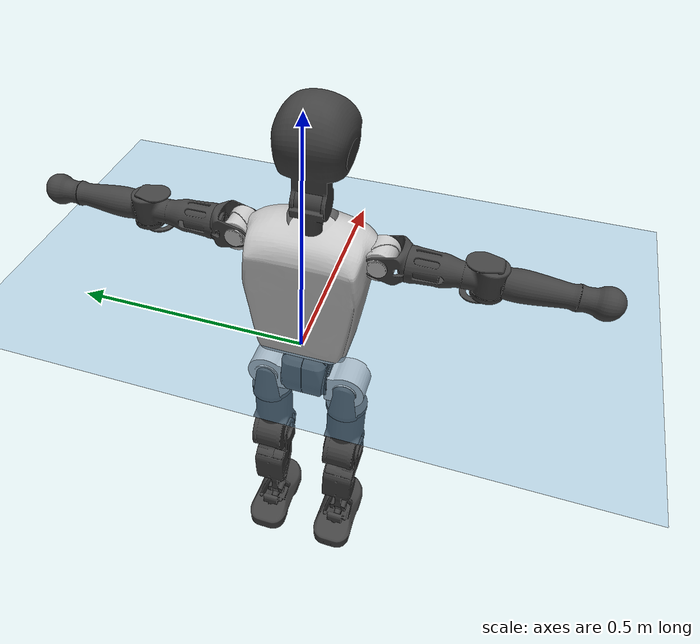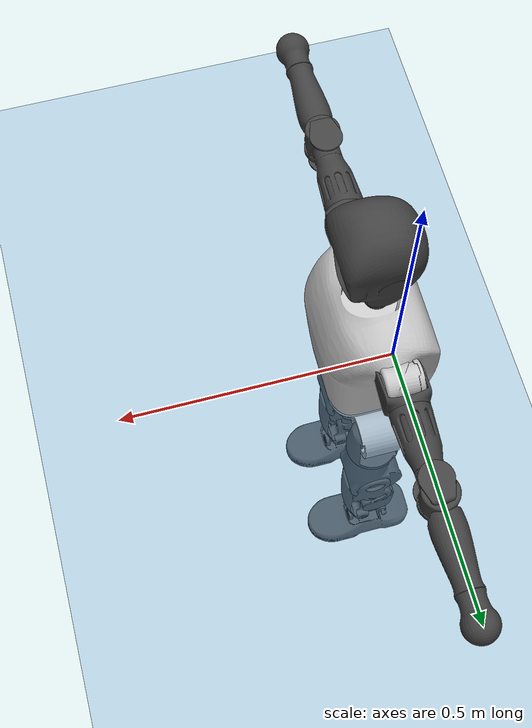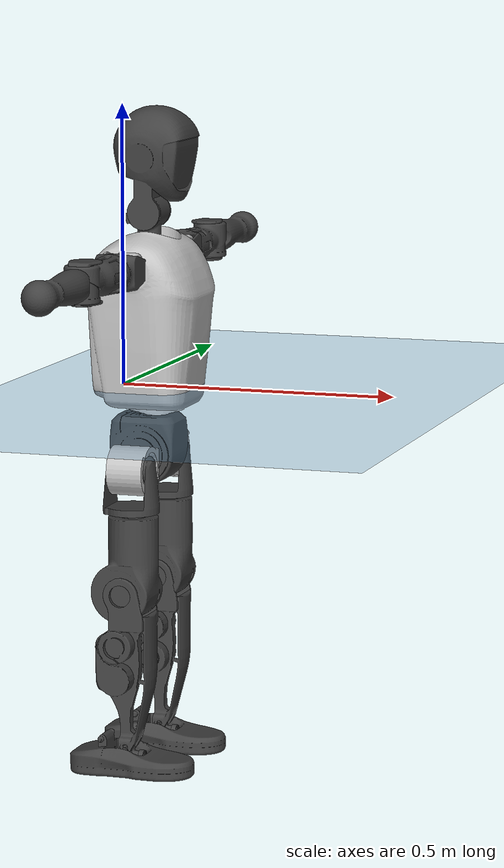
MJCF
<mujoco model="T1">
  <compiler angle="radian" assetdir="assets" balanceinertia="true" inertiafromgeom="false"/>

  <option timestep="0.005" density="1.2" viscosity="2e-05"/>

  <size nkey="1"/>

  <visual>
    <quality shadowsize="8192"/>
    <map shadowclip="0.5"/>
  </visual>

  <default>
    <default class="/">
      <joint armature="0.01" damping="0.01" frictionloss="0.1"/>
      <geom contype="0" conaffinity="0" group="1" solref="-1000 -80"/>
      <site size="0.01 0.005 0.005" group="5"/>
      <general forcelimited="true" biastype="affine" gainprm="25" biasprm="0 -25 -0.6"/>
      <default class="t1">
        <geom rgba="0.25 0.25 0.25 1"/>
        <default class="visual">
          <geom type="mesh" group="2"/>
        </default>
        <default class="collision">
          <geom group="3"/>
        </default>
        <default class="foot">
          <geom size="0.1115 0.05 0.015" type="box" condim="6" group="4" priority="1" solimp="0.015 1 0.015"/>
        </default>
        <default class="reward_collision_sphere">
          <geom group="5" rgba="1 0 0 1"/>
        </default>
      </default>
    </default>
  </default>

  <asset>
    <texture type="skybox" colorspace="auto" name="//unnamed_texture_0" builtin="gradient" rgb1="0.95 0.95 0.95" rgb2="0.95 0.95 0.95" width="100" height="600"/>
    <texture type="2d" colorspace="auto" name="texplane" builtin="checker" rgb1="0.345 0.575 0.748" rgb2="0.345 0.575 0.748" markrgb="1 1 1" width="512" height="512"/>
    <material name="MatPlane" class="/" texture="texplane" texuniform="true" texrepeat="2 2" specular="0.9"/>
    <mesh name="Trunk" class="/" file="Trunk.stl"/>
    <mesh name="H1" class="/" file="H1.stl"/>
    <mesh name="H2" class="/" file="H2.stl"/>
    <mesh name="AL1" class="/" file="AL1.stl"/>
    <mesh name="AL2" class="/" file="AL2.stl"/>
    <mesh name="AL3" class="/" file="AL3.stl"/>
    <mesh name="left_hand_link" class="/" file="left_hand_link.stl"/>
    <mesh name="AR1" class="/" file="AR1.stl"/>
    <mesh name="AR2" class="/" file="AR2.stl"/>
    <mesh name="AR3" class="/" file="AR3.stl"/>
    <mesh name="right_hand_link" class="/" file="right_hand_link.stl"/>
    <mesh name="Waist" class="/" file="Waist.stl"/>
    <mesh name="Hip_Pitch_Left" class="/" file="Hip_Pitch_Left.stl"/>
    <mesh name="Hip_Roll_Left" class="/" file="Hip_Roll_Left.stl"/>
    <mesh name="Hip_Yaw_Left" class="/" file="Hip_Yaw_Left.stl"/>
    <mesh name="Shank_Left" class="/" file="Shank_Left.stl"/>
    <mesh name="Ankle_Cross_Left" class="/" file="Ankle_Cross_Left.stl"/>
    <mesh name="left_foot_link" class="/" file="left_foot_link.stl"/>
    <mesh name="Hip_Pitch_Right" class="/" file="Hip_Pitch_Right.stl"/>
    <mesh name="Hip_Roll_Right" class="/" file="Hip_Roll_Right.stl"/>
    <mesh name="Hip_Yaw_Right" class="/" file="Hip_Yaw_Right.stl"/>
    <mesh name="Shank_Right" class="/" file="Shank_Right.stl"/>
    <mesh name="Ankle_Cross_Right" class="/" file="Ankle_Cross_Right.stl"/>
    <mesh name="right_foot_link" class="/" file="right_foot_link.stl"/>
  </asset>

  <worldbody>
    <geom name="floor" class="/" size="100 100 0.125" type="plane" group="0" material="MatPlane"/>
    <light name="toplight_shadow" class="/" pos="0 0 5" dir="0.0990148 0.0990148 -0.990148" type="directional" ambient="0.04 0.04 0.04" diffuse="0.55 0.55 0.55" specular="0.12 0.12 0.12"/>
    <light name="toplight_fill" class="/" pos="0 0 5" dir="0.0990148 0.0990148 -0.990148" type="directional" castshadow="false" ambient="0.04 0.04 0.04" diffuse="0.3 0.3 0.3" specular="0.08 0.08 0.08"/>
    <body name="trunk" childclass="t1" pos="2.62011e-05 -0.000333839 0.00100289" quat="1 1.15842e-05 4.13659e-05 -9.27654e-05">
      <inertial pos="0.0443687 -0.00162008 0.108107" quat="0.99996 -7.80895e-06 -0.00896019 1.39773e-05" mass="8.64276" diaginertia="0.0322564 0.0382295 0.0628325"/>
      <joint name="//unnamed_joint_0" type="free" armature="0" damping="0" frictionloss="0"/>
      <geom name="//unnamed_geom_1" class="visual" rgba="0.76 0.76 0.76 1" mesh="Trunk"/>
      <geom name="//unnamed_geom_2" class="collision" size="0.0674842 0.0899789 0.134968" pos="0.0485988 0 0.122743" type="box"/>
      <geom name="//unnamed_geom_3" class="reward_collision_sphere" size="0.103476" pos="0.0485988 0 0.102286"/>
      <geom name="//unnamed_geom_4" class="reward_collision_sphere" size="0.0134968" pos="0.0485988 0.0736547 0"/>
      <geom name="//unnamed_geom_5" class="reward_collision_sphere" size="0.0134968" pos="0.0485988 -0.0736547 0"/>
      <geom name="//unnamed_geom_6" class="reward_collision_sphere" size="0.0134968" pos="0.0485988 0.0927182 0.184115"/>
      <geom name="//unnamed_geom_7" class="reward_collision_sphere" size="0.0134968" pos="0.0485988 -0.0927182 0.184115"/>
      <site name="imu" pos="0.000351987 0.00859943 0.0047088" size="0.00899789"/>
      <camera name="track" pos="0 -1.73305 0" quat="0.707107 0.707107 0 0" mode="trackcom"/>
      <camera name="ego_camera" pos="0.0988176 0 0.429602" quat="-0.5 -0.5 0.5 0.5"/>
      <body name="H1" pos="0.0504715 -0.000290833 0.24914" quat="1 -0.000297805 -0.000205829 -0.000673538">
        <inertial pos="-0.000784026 -0.00103969 0.057812" quat="0.766361 -0.0126134 0.00509102 0.642266" mass="0.319243" diaginertia="8.55765e-05 0.000109477 0.00017189"/>
        <joint name="AAHead_yaw" pos="0 0 0" axis="-0.00252434 0.00500686 0.999984" range="-1.58914 1.61566" armature="0.00881927" damping="0.00369754" frictionloss="0.0891216"/>
        <geom name="//unnamed_geom_8" class="visual" mesh="H1"/>
        <body name="H2" pos="-0.000636337 0.000321106 0.0605631" quat="0.999999 4.71454e-05 -0.00104269 0.000623061">
          <inertial pos="0.00624264 0.000695463 0.101705" quat="0.988536 0.106092 -0.0743617 -0.0775275" mass="0.459081" diaginertia="0.000710532 0.000947757 0.00188705"/>
          <joint name="Head_pitch" pos="0 0 0" axis="0.000186823 -0.999991 -0.00419896" range="-1.23539 0.344475" armature="0.00911936" damping="0.00939181" frictionloss="0.0898407"/>
          <geom name="//unnamed_geom_9" class="visual" mesh="H2"/>
          <geom name="//unnamed_geom_10" class="collision" size="0.0719832" pos="0.0080998 0 0.112515"/>
          <geom name="//unnamed_geom_11" class="reward_collision_sphere" size="0.0809811" pos="0.0161996 0 0.102286"/>
        </body>
      </body>
      <body name="AL1" pos="0.0486341 0.0926196 0.223891" quat="1 0.000237833 0.000260793 -6.93541e-05">
        <inertial pos="-0.00160713 0.0387935 -0.000171788" quat="0.502087 0.503118 -0.504763 0.489893" mass="0.384691" diaginertia="0.000475603 0.000626394 0.000322723"/>
        <joint name="Left_Shoulder_Pitch" pos="0 0 0" axis="0.00112869 0.999999 0.000435551" range="-3.26424 1.22275" armature="0.0087279" damping="0.00911863" frictionloss="0.0933652"/>
        <geom name="//unnamed_geom_12" class="visual" rgba="0.76 0.76 0.76 1" mesh="AL1"/>
        <body name="AL2" pos="0.00183902 0.0410286 0.000143265" quat="1 0.000626206 -0.000647026 0.000278469">
          <inertial pos="0.00550574 0.0324368 -0.000355859" quat="0.48684 0.51295 -0.488213 0.511388" mass="0.113697" diaginertia="0.000136955 0.000163713 0.000192712"/>
          <joint name="Left_Shoulder_Roll" pos="0 0 0" axis="-0.999995 0.0031522 -0.000494783" range="-1.56855 1.75086" armature="0.009153" damping="0.0108712" frictionloss="0.0884831"/>
          <geom name="//unnamed_geom_13" class="visual" mesh="AL2"/>
          <body name="AL3" pos="0.00100913 0.0536322 -0.000660113" quat="1 0.000841707 3.70037e-06 -0.000326849">
            <inertial pos="0.0016815 0.0736236 -0.00101808" quat="0.707911 0.706201 -0.00313328 -0.0114961" mass="0.764975" diaginertia="0.0046772 0.00663947 0.000720547"/>
            <joint name="Left_Elbow_Pitch" pos="0 0 0" axis="-0.000638524 -0.999988 0.00489148" range="-2.28345 2.31487" armature="0.00962044" damping="0.0103881" frictionloss="0.100436"/>
            <geom name="//unnamed_geom_14" class="visual" mesh="AL3"/>
            <geom name="//unnamed_geom_15" class="collision" size="0.0269937 0.0674842" pos="0 0.0433263 0" quat="0.707105 0.707108 0 0" type="cylinder"/>
            <geom name="//unnamed_geom_16" class="reward_collision_sphere" size="0.0323924"/>
            <body name="left_hand_link" pos="0.00088189 0.126769 0.000872369" quat="0.999999 -6.44855e-05 -0.000688528 0.000857567">
              <inertial pos="0.000231025 0.0957952 0.000837229" quat="0.707246 0.706959 0.0033501 0.000834173" mass="0.240182" diaginertia="0.00292568 0.00403274 0.000236026"/>
              <joint name="Left_Elbow_Yaw" pos="0 0 0" axis="-0.0102155 -0.000817331 0.999947" range="-2.43225 0.0476555" armature="0.00842041" damping="0.00257436" frictionloss="0.087906"/>
              <geom name="//unnamed_geom_17" class="visual" mesh="left_hand_link"/>
              <geom name="//unnamed_geom_18" class="collision" size="0.0269937 0.0787316" pos="0 0.112648 0" quat="0.707105 0.707108 0 0" type="cylinder"/>
              <geom name="//unnamed_geom_19" class="reward_collision_sphere" size="0.0449895"/>
              <geom name="//unnamed_geom_20" class="reward_collision_sphere" size="0.0314926" pos="0 0.0953178 0"/>
              <geom name="//unnamed_geom_21" class="reward_collision_sphere" size="0.0314926" pos="0 0.186303 0"/>
            </body>
          </body>
        </body>
      </body>
      <body name="AR1" pos="0.0468978 -0.0891127 0.221656" quat="1 -0.000245797 0.000331509 0.000150839">
        <inertial pos="-0.00101291 -0.0409542 0.000200856" quat="0.506789 0.4959 -0.500383 0.496855" mass="0.385063" diaginertia="0.000476821 0.000636669 0.000327532"/>
        <joint name="Right_Shoulder_Pitch" pos="0 0 0" axis="0.0101413 -0.999904 0.00942629" range="-1.22492 3.35036" armature="0.00919843" damping="0.00356627" frictionloss="0.0801081"/>
        <geom name="//unnamed_geom_22" class="visual" rgba="0.76 0.76 0.76 1" mesh="AR1"/>
        <body name="AR2" pos="0.00178142 -0.0410383 -0.000717892" quat="1 -3.2142e-05 4.08377e-05 -2.39978e-05">
          <inertial pos="0.00411841 -0.0328436 0.000504453" quat="0.51575 0.485359 -0.511999 0.486093" mass="0.122705" diaginertia="0.000143744 0.000174105 0.000201613"/>
          <joint name="Right_Shoulder_Roll" pos="0 0 0" axis="-0.999988 0.00311345 -0.00371361" range="-1.7488 1.58938" armature="0.00906458" damping="0.000605222" frictionloss="0.0960094"/>
          <geom name="//unnamed_geom_23" class="visual" mesh="AR2"/>
          <body name="AR3" pos="-0.0020889 -0.0535583 -0.000346309" quat="1 0.000215097 0.000134703 -3.22761e-05">
            <inertial pos="-0.000243801 -0.0729599 0.000606858" quat="0.705557 0.708649 0.00183788 -0.00174969" mass="0.776828" diaginertia="0.00462787 0.00643017 0.000717864"/>
            <joint name="Right_Elbow_Pitch" pos="0 0 0" axis="-0.00124119 0.999997 0.00219821" range="-2.29359 2.2365" armature="0.00880636" damping="0.0148833" frictionloss="0.089512"/>
            <geom name="//unnamed_geom_24" class="visual" mesh="AR3"/>
            <geom name="//unnamed_geom_25" class="collision" size="0.0269937 0.0674842" pos="0 -0.0433263 0" quat="0.707105 0.707108 0 0" type="cylinder"/>
            <geom name="//unnamed_geom_26" class="reward_collision_sphere" size="0.0323924"/>
            <body name="right_hand_link" pos="-0.000431086 -0.127694 0.000833273" quat="1 5.39567e-08 6.94465e-08 -4.09897e-07">
              <inertial pos="-0.00056652 -0.094939 -0.00112908" quat="0.706123 0.708088 -0.000842303 -0.000643121" mass="0.230778" diaginertia="0.00284525 0.00396004 0.000239391"/>
              <joint name="Right_Elbow_Yaw" pos="0 0 0" axis="7.86081e-05 -0.00688718 0.999976" range="-0.0213364 2.47083" armature="0.00891152" damping="0.00794974" frictionloss="0.0876298"/>
              <geom name="//unnamed_geom_27" class="visual" mesh="right_hand_link"/>
              <geom name="//unnamed_geom_28" class="collision" size="0.0269937 0.0787316" pos="0 -0.112648 0" quat="0.707105 0.707108 0 0" type="cylinder"/>
              <geom name="//unnamed_geom_29" class="reward_collision_sphere" size="0.0449895"/>
              <geom name="//unnamed_geom_30" class="reward_collision_sphere" size="0.0314926" pos="0 -0.0953178 0"/>
              <geom name="//unnamed_geom_31" class="reward_collision_sphere" size="0.0314926" pos="0 -0.186303 0"/>
            </body>
          </body>
        </body>
      </body>
      <body name="Waist" pos="0.0483986 -0.00209214 -0.118508" quat="1 0.000587493 -2.97789e-06 0.000194673">
        <inertial pos="0.00170419 -0.00211622 0.00733879" quat="0.983644 0.000239768 -0.180104 0.0025511" mass="1.84494" diaginertia="0.00180671 0.00251169 0.00521236"/>
        <joint name="Waist" pos="0 0 0" axis="-0.000695475 -0.00198842 0.999998" range="-1.5698 1.57304" armature="0.00852815" damping="0.00347729" frictionloss="0.0804095"/>
        <geom name="//unnamed_geom_32" class="visual" mesh="Waist"/>
        <body name="Hip_Pitch_Left" pos="0.000177698 0.0901313 0.00127124" quat="1 -0.000280067 0.000423286 0.000836395">
          <inertial pos="0.0011906 -0.00555845 -0.018942" quat="0.974775 0.222583 0.0164522 0.000675151" mass="0.742314" diaginertia="0.000638877 0.000739453 0.00142646"/>
          <joint name="Left_Hip_Pitch" pos="0 0 0" axis="0.00920242 0.999952 0.00330384" range="-1.7985 1.55256" armature="0.00953147" damping="0.0146282" frictionloss="0.0855917"/>
          <geom name="//unnamed_geom_33" class="visual" rgba="0.76 0.76 0.76 1" mesh="Hip_Pitch_Left"/>
          <body name="Hip_Roll_Left" pos="0.0021234 -0.00025508 -0.0207094" quat="0.999999 -0.000520528 0.00117326 -5.24044e-05">
            <inertial pos="-0.000695543 -0.00144752 -0.0558741" quat="0.710424 -0.00413677 -0.0167277 0.703563" mass="0.280894" diaginertia="0.000593416 0.000737875 0.000581043"/>
            <joint name="Left_Hip_Roll" pos="0 0 0" axis="-0.999943 0.00708272 0.00797246" range="-1.58536 0.242013" armature="0.00979358" damping="0.00963898" frictionloss="0.0875077"/>
            <geom name="//unnamed_geom_34" class="visual" mesh="Hip_Roll_Left"/>
            <geom name="//unnamed_geom_35" class="reward_collision_sphere" size="0.0494884"/>
            <body name="Hip_Yaw_Left" pos="0.00263431 -0.00127029 -0.0827941" quat="0.999999 -0.000917427 -0.000563139 0.000610797">
              <inertial pos="-0.00571627 -0.000348039 -0.0910407" quat="0.697218 -0.0339434 -0.0314283 0.715365" mass="1.58357" diaginertia="0.0089978 0.0124626 0.00296876"/>
              <joint name="Left_Hip_Yaw" pos="0 0 0" axis="-0.0046666 0.00405408 -0.999981" range="-1.01888 0.964245" armature="0.00905756" damping="0.0142319" frictionloss="0.0870409"/>
              <geom name="//unnamed_geom_36" class="visual" mesh="Hip_Yaw_Left"/>
              <geom name="//unnamed_geom_37" class="collision" size="0.0449895 0.0719832" type="cylinder"/>
              <body name="Shank_Left" pos="-0.0112122 2.13699e-05 -0.139954" quat="1 -0.000141832 4.59205e-05 -0.000114828">
                <inertial pos="-0.00329641 -0.00135409 -0.126702" quat="0.997524 -0.000803357 -0.024251 0.0660159" mass="1.25969" diaginertia="0.0121423 0.0166411 0.00205063"/>
                <joint name="Left_Knee_Pitch" pos="0 0 0" axis="-1.30201e-05 1 -0.000105443" range="-0.00723639 2.32466" armature="0.00897793" damping="0.0129679" frictionloss="0.0919038"/>
                <geom name="//unnamed_geom_38" class="visual" mesh="Shank_Left"/>
                <geom name="//unnamed_geom_39" class="collision" size="0.0449895 0.0674842" pos="0 0 -0.122743" type="cylinder"/>
                <geom name="//unnamed_geom_40" class="reward_collision_sphere" size="0.0584863"/>
                <body name="Ankle_Cross_Left" pos="-0.00119018 -0.000925249 -0.284763" quat="1 1.56287e-05 4.75464e-06 -3.29213e-05">
                  <inertial pos="-0.00204334 -0.000787088 -0.00777913" quat="0.443432 0.550411 0.550868 0.443802" mass="0.0551432" diaginertia="1.01532e-05 1.28372e-05 1.28531e-05"/>
                  <joint name="Left_Ankle_Pitch" pos="0 0 0" axis="-0.00105914 0.999999 -0.00136461" range="-0.849988 0.32879" armature="0.00924969" damping="0.00679224" frictionloss="0.0867905"/>
                  <geom name="//unnamed_geom_41" class="visual" mesh="Ankle_Cross_Left"/>
                  <body name="left_foot_link" pos="-0.00136991 0.000890966 -0.0119891" quat="1 -0.000166072 6.60729e-05 -0.000181263">
                    <inertial pos="-0.00105861 0.0013904 -0.00910887" quat="0.000690708 0.62019 0.000473551 0.784451" mass="0.480584" diaginertia="0.000957969 0.00114694 0.00239923"/>
                    <joint name="Left_Ankle_Roll" pos="0 0 0" axis="-0.999991 -0.000253761 0.00416183" range="-0.420956 0.483598" armature="0.00995757" damping="0.0110615" frictionloss="0.0853526"/>
                    <geom name="//unnamed_geom_42" class="visual" mesh="left_foot_link"/>
                    <geom name="left_foot" class="foot" size="0.108587 0.0469701 0.0143353" pos="0.0080998 0 -0.0153429"/>
                    <geom name="//unnamed_geom_44" class="reward_collision_sphere" size="0.0467891" pos="0.0080998 0 -0.0153429"/>
                    <geom name="//unnamed_geom_45" class="reward_collision_sphere" size="0.0269937" pos="0.0769481 -0.0199301 -0.0153429"/>
                    <geom name="//unnamed_geom_46" class="reward_collision_sphere" size="0.0269937" pos="-0.0566986 -0.0199301 -0.0153429"/>
                    <site name="left_foot" class="foot" pos="0.0080998 0 -0.0153429" size="0.00899789"/>
                  </body>
                </body>
              </body>
            </body>
          </body>
        </body>
        <body name="Hip_Pitch_Right" pos="0.000832763 -0.0912621 -0.00116251" quat="1 5.91706e-05 6.89354e-05 -0.00011026">
          <inertial pos="-0.00134868 0.00671491 -0.0182857" quat="0.973301 -0.229068 0.0137798 -0.00480602" mass="0.758553" diaginertia="0.000637368 0.000719103 0.00141009"/>
          <joint name="Right_Hip_Pitch" pos="0 0 0" axis="-0.00234159 -0.999987 0.00463669" range="-1.58532 1.79974" armature="0.0101482" damping="0.0117819" frictionloss="0.0926778"/>
          <geom name="//unnamed_geom_47" class="visual" rgba="0.76 0.76 0.76 1" mesh="Hip_Pitch_Right"/>
          <body name="Hip_Roll_Right" pos="0.00010339 -0.00020968 -0.0186306" quat="1 6.85332e-05 -6.22409e-05 -0.000100429">
            <inertial pos="0.00129912 -0.00263189 -0.0557494" quat="0.702766 -0.00610136 -0.0131732 0.711273" mass="0.270963" diaginertia="0.000590527 0.000719863 0.000559302"/>
            <joint name="Right_Hip_Roll" pos="0 0 0" axis="-0.999997 -0.00222449 -0.000466051" range="-0.21241 1.57006" armature="0.00915859" damping="0.00292216" frictionloss="0.0851135"/>
            <geom name="//unnamed_geom_48" class="visual" mesh="Hip_Roll_Right"/>
            <geom name="//unnamed_geom_49" class="reward_collision_sphere" size="0.0494884"/>
            <body name="Hip_Yaw_Right" pos="0.00165454 -0.000876502 -0.0839372" quat="1 -0.000371758 0.000454245 -0.000445819">
              <inertial pos="-0.00544951 -0.00290365 -0.0921988" quat="0.71655 -0.0355315 -0.0342373 0.695789" mass="1.52876" diaginertia="0.00871537 0.0119891 0.00284667"/>
              <joint name="Right_Hip_Yaw" pos="0 0 0" axis="0.00289015 -0.00440362 -0.999986" range="-1.00132 1.03273" armature="0.00922034" damping="0.00496842" frictionloss="0.0895429"/>
              <geom name="//unnamed_geom_50" class="visual" mesh="Hip_Yaw_Right"/>
              <geom name="//unnamed_geom_51" class="collision" size="0.0449895 0.0719832" type="cylinder"/>
              <body name="Shank_Right" pos="-0.0108277 -0.00161805 -0.136693" quat="1 3.98276e-05 -2.651e-05 8.17201e-05">
                <inertial pos="-0.00449312 0.000101902 -0.124743" quat="0.999223 0.000880387 -0.0253965 -0.0301216" mass="1.28421" diaginertia="0.0116873 0.0170162 0.00216569"/>
                <joint name="Right_Knee_Pitch" pos="0 0 0" axis="-0.00166401 -0.999998 0.000853587" range="-2.3518 -0.020895" armature="0.0089879" damping="0.00371465" frictionloss="0.0900921"/>
                <geom name="//unnamed_geom_52" class="visual" mesh="Shank_Right"/>
                <geom name="//unnamed_geom_53" class="collision" size="0.0449895 0.0674842" pos="0 0 -0.122743" type="cylinder"/>
                <geom name="//unnamed_geom_54" class="reward_collision_sphere" size="0.0584863"/>
                <body name="Ankle_Cross_Right" pos="0.000978235 -0.00147978 -0.286426" quat="1 -0.000248257 0.000172381 -0.000528592">
                  <inertial pos="-0.00208228 -0.000169525 -0.0102927" quat="0.436322 0.555108 0.547042 0.449693" mass="0.0521142" diaginertia="9.58625e-06 1.24305e-05 1.20674e-05"/>
                  <joint name="Right_Ankle_Pitch" pos="0 0 0" axis="-0.00667659 -0.999965 -0.00502443" range="-0.336468 0.848774" armature="0.00912882" damping="0.00165235" frictionloss="0.0843354"/>
                  <geom name="//unnamed_geom_55" class="visual" mesh="Ankle_Cross_Right"/>
                  <body name="right_foot_link" pos="-0.00107 -0.000483456 -0.0125603" quat="1 -9.04343e-05 -0.000256383 0.000400879">
                    <inertial pos="-0.00245782 -0.000976361 -0.00908568" quat="-0.000976535 0.623107 0.00107662 0.782135" mass="0.497634" diaginertia="0.000951602 0.00117768 0.00245491"/>
                    <joint name="Right_Ankle_Roll" pos="0 0 0" axis="-1 0.000687053 -0.000173183" range="-0.429002 0.450279" armature="0.00875663" damping="0.0198617" frictionloss="0.0902912"/>
                    <geom name="//unnamed_geom_56" class="visual" mesh="right_foot_link"/>
                    <geom name="right_foot" class="foot" size="0.0946808 0.0456443 0.0135859" pos="0.0080998 0 -0.0153429"/>
                    <geom name="//unnamed_geom_58" class="reward_collision_sphere" size="0.0359916"/>
                    <geom name="//unnamed_geom_59" class="reward_collision_sphere" size="0.0269937" pos="0.0080998 0 -0.0153429"/>
                    <geom name="//unnamed_geom_60" class="reward_collision_sphere" size="0.0269937" pos="0.0769481 0.0199301 -0.0153429"/>
                    <geom name="//unnamed_geom_61" class="reward_collision_sphere" size="0.0269937" pos="-0.0566986 0.0199301 -0.0153429"/>
                    <site name="right_foot" class="foot" pos="0.0080998 0 -0.0153429" size="0.00899789"/>
                  </body>
                </body>
              </body>
            </body>
          </body>
        </body>
      </body>
    </body>
  </worldbody>

  <contact>
    <pair class="/" geom1="floor" geom2="left_foot" name="//unnamed_contact_0"/>
    <pair class="/" geom1="floor" geom2="right_foot" name="//unnamed_contact_1"/>
  </contact>

  <actuator>
    <general name="AAHead_yaw" class="/" joint="AAHead_yaw" forcerange="-6.43514 6.43514" gainprm="22.2424" biasprm="0 -22.2424 -0.526831"/>
    <general name="Head_pitch" class="/" joint="Head_pitch" forcerange="-6.48536 6.48536" gainprm="22.2424" biasprm="0 -22.2424 -0.526831"/>
    <general name="Left_Shoulder_Pitch" class="/" joint="Left_Shoulder_Pitch" forcerange="-16.6901 16.6901" gainprm="22.2424" biasprm="0 -22.2424 -0.526831"/>
    <general name="Left_Shoulder_Roll" class="/" joint="Left_Shoulder_Roll" forcerange="-16.4046 16.4046" gainprm="22.2424" biasprm="0 -22.2424 -0.526831"/>
    <general name="Left_Elbow_Pitch" class="/" joint="Left_Elbow_Pitch" forcerange="-17.4709 17.4709" gainprm="22.2424" biasprm="0 -22.2424 -0.526831"/>
    <general name="Left_Elbow_Yaw" class="/" joint="Left_Elbow_Yaw" forcerange="-16.1029 16.1029" gainprm="22.2424" biasprm="0 -22.2424 -0.526831"/>
    <general name="Right_Shoulder_Pitch" class="/" joint="Right_Shoulder_Pitch" forcerange="-14.9314 14.9314" gainprm="22.2424" biasprm="0 -22.2424 -0.526831"/>
    <general name="Right_Shoulder_Roll" class="/" joint="Right_Shoulder_Roll" forcerange="-16.2085 16.2085" gainprm="22.2424" biasprm="0 -22.2424 -0.526831"/>
    <general name="Right_Elbow_Pitch" class="/" joint="Right_Elbow_Pitch" forcerange="-17.5118 17.5118" gainprm="22.2424" biasprm="0 -22.2424 -0.526831"/>
    <general name="Right_Elbow_Yaw" class="/" joint="Right_Elbow_Yaw" forcerange="-15.585 15.585" gainprm="22.2424" biasprm="0 -22.2424 -0.526831"/>
    <general name="Waist" class="/" joint="Waist" forcerange="-27.4908 27.4908" gainprm="22.2424" biasprm="0 -22.2424 -0.526831"/>
    <general name="Left_Hip_Pitch" class="/" joint="Left_Hip_Pitch" forcerange="-41.967 41.967" gainprm="22.2424" biasprm="0 -22.2424 -0.526831"/>
    <general name="Left_Hip_Roll" class="/" joint="Left_Hip_Roll" forcerange="-28.8609 28.8609" gainprm="22.2424" biasprm="0 -22.2424 -0.526831"/>
    <general name="Left_Hip_Yaw" class="/" joint="Left_Hip_Yaw" forcerange="-24.6022 24.6022" gainprm="22.2424" biasprm="0 -22.2424 -0.526831"/>
    <general name="Left_Knee_Pitch" class="/" joint="Left_Knee_Pitch" forcerange="-55.6343 55.6343" gainprm="22.2424" biasprm="0 -22.2424 -0.526831"/>
    <general name="Left_Ankle_Pitch" class="/" joint="Left_Ankle_Pitch" forcerange="-16.3029 16.3029" gainprm="22.2424" biasprm="0 -22.2424 -0.526831"/>
    <general name="Left_Ankle_Roll" class="/" joint="Left_Ankle_Roll" forcerange="-13.2351 13.2351" gainprm="22.2424" biasprm="0 -22.2424 -0.526831"/>
    <general name="Right_Hip_Pitch" class="/" joint="Right_Hip_Pitch" forcerange="-40.3513 40.3513" gainprm="22.2424" biasprm="0 -22.2424 -0.526831"/>
    <general name="Right_Hip_Roll" class="/" joint="Right_Hip_Roll" forcerange="-27.2021 27.2021" gainprm="22.2424" biasprm="0 -22.2424 -0.526831"/>
    <general name="Right_Hip_Yaw" class="/" joint="Right_Hip_Yaw" forcerange="-27.3291 27.3291" gainprm="22.2424" biasprm="0 -22.2424 -0.526831"/>
    <general name="Right_Knee_Pitch" class="/" joint="Right_Knee_Pitch" forcerange="-57.0549 57.0549" gainprm="22.2424" biasprm="0 -22.2424 -0.526831"/>
    <general name="Right_Ankle_Pitch" class="/" joint="Right_Ankle_Pitch" forcerange="-18.0113 18.0113" gainprm="22.2424" biasprm="0 -22.2424 -0.526831"/>
    <general name="Right_Ankle_Roll" class="/" joint="Right_Ankle_Roll" forcerange="-12.4341 12.4341" gainprm="22.2424" biasprm="0 -22.2424 -0.526831"/>
  </actuator>

  <sensor>
    <gyro site="imu" name="imu_angular_velocity"/>
    <velocimeter site="imu" name="imu_linear_velocity"/>
    <framelinvel objtype="site" objname="left_foot" name="left_foot_global_linear_velocity"/>
    <framelinvel objtype="site" objname="right_foot" name="right_foot_global_linear_velocity"/>
  </sensor>

  <keyframe>
    <key name="home" qpos="0 0 0.6385 1 0 0 0 0 0 0 1.4 0 -0.4 0 -1.4 0 0.4 0 -0.4 0 0 0.8 -0.4 0 0.4 0 0 -0.8 0.4 0"/>
  </keyframe>
</mujoco>
